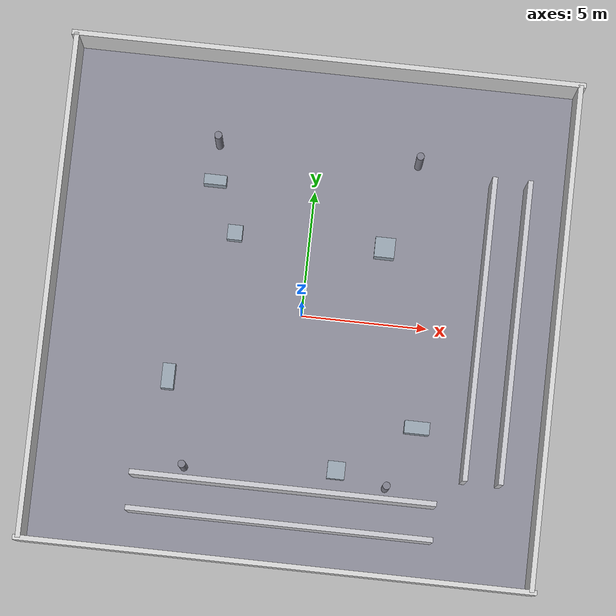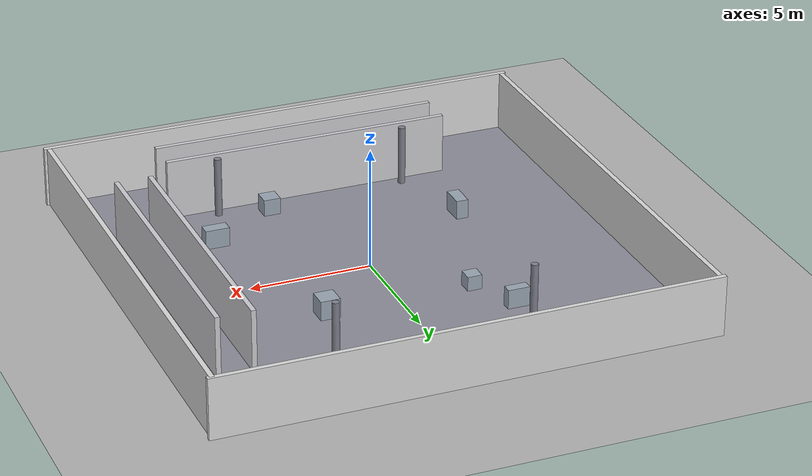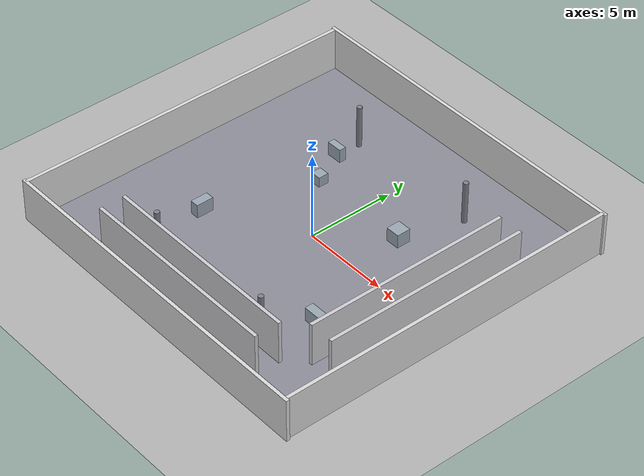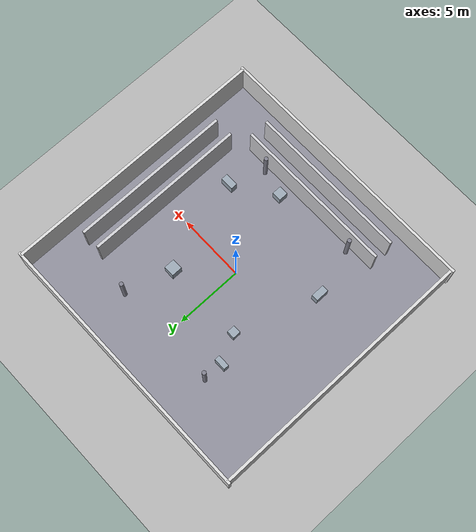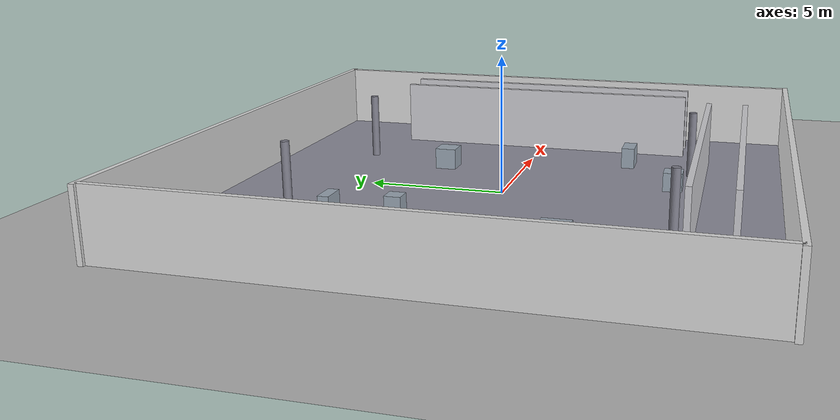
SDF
<?xml version="1.0"?>
<sdf version="1.11">
  <world name="small_warehouse">

    <physics name="1ms" type="ignored">
      <max_step_size>0.001</max_step_size>
      <real_time_factor>0.15</real_time_factor>
    </physics>

    <plugin filename="gz-sim-physics-system"
            name="gz::sim::systems::Physics"/>

    <plugin filename="gz-sim-sensors-system"
            name="gz::sim::systems::Sensors">
      <render_engine>ogre2</render_engine>
    </plugin>

    <plugin filename="gz-sim-scene-broadcaster-system"
            name="gz::sim::systems::SceneBroadcaster"/>

    <plugin filename="gz-sim-user-commands-system"
            name="gz::sim::systems::UserCommands"/>

    <plugin filename="gz-sim-imu-system"
            name="gz::sim::systems::Imu"/>

    <plugin filename="gz-sim-navsat-system"
            name="gz::sim::systems::NavSat"/>

    <!-- NavSat requires a WGS-84 anchor for converting world poses to lat/lon/alt. -->
    <spherical_coordinates>
      <surface_model>EARTH_WGS84</surface_model>
      <world_frame_orientation>ENU</world_frame_orientation>
      <latitude_deg>30.3072</latitude_deg>
      <longitude_deg>-97.7560</longitude_deg>
      <elevation>160.0</elevation>
      <heading_deg>0</heading_deg>
    </spherical_coordinates>

    <light name="sun" type="directional">
      <cast_shadows>true</cast_shadows>
      <pose>0 0 10 0 0 0</pose>
      <diffuse>0.8 0.8 0.8 1</diffuse>
      <specular>0.2 0.2 0.2 1</specular>
      <direction>-0.5 0.1 -0.9</direction>
    </light>

    <!-- Fill light from opposite angle — reduces harsh shadows indoors -->
    <light name="fill" type="directional">
      <cast_shadows>false</cast_shadows>
      <pose>0 0 10 0 0 0</pose>
      <diffuse>0.4 0.4 0.4 1</diffuse>
      <specular>0.0 0.0 0.0 1</specular>
      <direction>0.5 -0.1 -0.9</direction>
    </light>

    <model name="ground_plane">
      <static>true</static>
      <link name="link">
        <collision name="collision">
          <geometry>
            <plane>
              <normal>0 0 1</normal>
              <size>100 100</size>
            </plane>
          </geometry>
          <surface>
            <friction>
              <ode>
                <mu>2.0</mu>
                <mu2>2.0</mu2>
                <slip1>0.0</slip1>
                <slip2>0.0</slip2>
              </ode>
            </friction>
            <contact>
              <ode>
                <kp>1e7</kp>
                <kd>1.0</kd>
              </ode>
            </contact>
          </surface>
        </collision>
        <visual name="visual">
          <geometry>
            <plane>
              <normal>0 0 1</normal>
              <size>100 100</size>
            </plane>
          </geometry>
          <material>
            <ambient>0.70 0.70 0.70 1</ambient>
            <diffuse>0.70 0.70 0.70 1</diffuse>
            <specular>0.05 0.05 0.05 1</specular>
          </material>
        </visual>
      </link>
    </model>

    <!-- Visual-only warehouse floor; ground_plane provides collision. -->
    <model name="warehouse_floor">
      <static>true</static>
      <pose>0 0 0.001 0 0 0</pose>
      <link name="link">
        <visual name="visual">
          <geometry>
            <box><size>20 20 0.001</size></box>
          </geometry>
          <material>
            <ambient>0.55 0.55 0.60 1</ambient>
            <diffuse>0.55 0.55 0.60 1</diffuse>
            <specular>0.05 0.05 0.05 1</specular>
          </material>
        </visual>
      </link>
    </model>

    <model name="wall_north">
      <static>true</static>
      <pose>0 10 1.25 0 0 0</pose>
      <link name="link">
        <collision name="collision">
          <geometry><box><size>20.4 0.2 2.5</size></box></geometry>
        </collision>
        <visual name="visual">
          <geometry><box><size>20.4 0.2 2.5</size></box></geometry>
          <material>
            <ambient>0.85 0.85 0.85 1</ambient>
            <diffuse>0.85 0.85 0.85 1</diffuse>
            <specular>0.05 0.05 0.05 1</specular>
          </material>
        </visual>
      </link>
    </model>

    <model name="wall_south">
      <static>true</static>
      <pose>0 -10 1.25 0 0 0</pose>
      <link name="link">
        <collision name="collision">
          <geometry><box><size>20.4 0.2 2.5</size></box></geometry>
        </collision>
        <visual name="visual">
          <geometry><box><size>20.4 0.2 2.5</size></box></geometry>
          <material>
            <ambient>0.85 0.85 0.85 1</ambient>
            <diffuse>0.85 0.85 0.85 1</diffuse>
            <specular>0.05 0.05 0.05 1</specular>
          </material>
        </visual>
      </link>
    </model>

    <model name="wall_east">
      <static>true</static>
      <pose>10 0 1.25 0 0 0</pose>
      <link name="link">
        <collision name="collision">
          <geometry><box><size>0.2 20.0 2.5</size></box></geometry>
        </collision>
        <visual name="visual">
          <geometry><box><size>0.2 20.0 2.5</size></box></geometry>
          <material>
            <ambient>0.85 0.85 0.85 1</ambient>
            <diffuse>0.85 0.85 0.85 1</diffuse>
            <specular>0.05 0.05 0.05 1</specular>
          </material>
        </visual>
      </link>
    </model>

    <model name="wall_west">
      <static>true</static>
      <pose>-10 0 1.25 0 0 0</pose>
      <link name="link">
        <collision name="collision">
          <geometry><box><size>0.2 20.0 2.5</size></box></geometry>
        </collision>
        <visual name="visual">
          <geometry><box><size>0.2 20.0 2.5</size></box></geometry>
          <material>
            <ambient>0.85 0.85 0.85 1</ambient>
            <diffuse>0.85 0.85 0.85 1</diffuse>
            <specular>0.05 0.05 0.05 1</specular>
          </material>
        </visual>
      </link>
    </model>

    <!-- NE quadrant -->
    <model name="obstacle_1">
      <static>true</static>
      <pose>3.0 3.0 0.40 0 0 0</pose>
      <link name="link">
        <collision name="collision">
          <geometry><box><size>0.80 0.80 0.80</size></box></geometry>
        </collision>
        <visual name="visual">
          <geometry><box><size>0.80 0.80 0.80</size></box></geometry>
          <material>
            <ambient>0.60 0.65 0.70 1</ambient>
            <diffuse>0.60 0.65 0.70 1</diffuse>
            <specular>0.05 0.05 0.05 1</specular>
          </material>
        </visual>
      </link>
    </model>

    <!-- NW quadrant -->
    <model name="obstacle_2">
      <static>true</static>
      <pose>-3.0 3.0 0.30 0 0 0</pose>
      <link name="link">
        <collision name="collision">
          <geometry><box><size>0.60 0.60 0.60</size></box></geometry>
        </collision>
        <visual name="visual">
          <geometry><box><size>0.60 0.60 0.60</size></box></geometry>
          <material>
            <ambient>0.60 0.65 0.70 1</ambient>
            <diffuse>0.60 0.65 0.70 1</diffuse>
            <specular>0.05 0.05 0.05 1</specular>
          </material>
        </visual>
      </link>
    </model>

    <!-- SE quadrant — elongated along X -->
    <model name="obstacle_3">
      <static>true</static>
      <pose>5.0 -4.0 0.40 0 0 0</pose>
      <link name="link">
        <collision name="collision">
          <geometry><box><size>1.00 0.50 0.80</size></box></geometry>
        </collision>
        <visual name="visual">
          <geometry><box><size>1.00 0.50 0.80</size></box></geometry>
          <material>
            <ambient>0.60 0.65 0.70 1</ambient>
            <diffuse>0.60 0.65 0.70 1</diffuse>
            <specular>0.05 0.05 0.05 1</specular>
          </material>
        </visual>
      </link>
    </model>

    <!-- SW quadrant — elongated along Y -->
    <model name="obstacle_4">
      <static>true</static>
      <pose>-5.0 -3.0 0.40 0 0 0</pose>
      <link name="link">
        <collision name="collision">
          <geometry><box><size>0.50 1.00 0.80</size></box></geometry>
        </collision>
        <visual name="visual">
          <geometry><box><size>0.50 1.00 0.80</size></box></geometry>
          <material>
            <ambient>0.60 0.65 0.70 1</ambient>
            <diffuse>0.60 0.65 0.70 1</diffuse>
            <specular>0.05 0.05 0.05 1</specular>
          </material>
        </visual>
      </link>
    </model>

    <!-- South-centre -->
    <model name="obstacle_5">
      <static>true</static>
      <pose>2.0 -6.0 0.35 0 0 0</pose>
      <link name="link">
        <collision name="collision">
          <geometry><box><size>0.70 0.70 0.70</size></box></geometry>
        </collision>
        <visual name="visual">
          <geometry><box><size>0.70 0.70 0.70</size></box></geometry>
          <material>
            <ambient>0.60 0.65 0.70 1</ambient>
            <diffuse>0.60 0.65 0.70 1</diffuse>
            <specular>0.05 0.05 0.05 1</specular>
          </material>
        </visual>
      </link>
    </model>

    <!-- North-west — flat crate shape -->
    <model name="obstacle_6">
      <static>true</static>
      <pose>-4.0 5.0 0.40 0 0 0</pose>
      <link name="link">
        <collision name="collision">
          <geometry><box><size>0.90 0.40 0.80</size></box></geometry>
        </collision>
        <visual name="visual">
          <geometry><box><size>0.90 0.40 0.80</size></box></geometry>
          <material>
            <ambient>0.60 0.65 0.70 1</ambient>
            <diffuse>0.60 0.65 0.70 1</diffuse>
            <specular>0.05 0.05 0.05 1</specular>
          </material>
        </visual>
      </link>
    </model>

    <model name="corridor_a_wall_west">
      <static>true</static>
      <pose>7.0 0 1.25 0 0 0</pose>
      <link name="link">
        <collision name="collision">
          <geometry><box><size>0.2 12.0 2.5</size></box></geometry>
        </collision>
        <visual name="visual">
          <geometry><box><size>0.2 12.0 2.5</size></box></geometry>
          <material>
            <ambient>0.80 0.80 0.82 1</ambient>
            <diffuse>0.80 0.80 0.82 1</diffuse>
            <specular>0.05 0.05 0.05 1</specular>
          </material>
        </visual>
      </link>
    </model>

    <model name="corridor_a_wall_east">
      <static>true</static>
      <pose>8.4 0 1.25 0 0 0</pose>
      <link name="link">
        <collision name="collision">
          <geometry><box><size>0.2 12.0 2.5</size></box></geometry>
        </collision>
        <visual name="visual">
          <geometry><box><size>0.2 12.0 2.5</size></box></geometry>
          <material>
            <ambient>0.80 0.80 0.82 1</ambient>
            <diffuse>0.80 0.80 0.82 1</diffuse>
            <specular>0.05 0.05 0.05 1</specular>
          </material>
        </visual>
      </link>
    </model>

    <model name="corridor_b_wall_north">
      <static>true</static>
      <pose>0 -7.0 1.25 0 0 0</pose>
      <link name="link">
        <collision name="collision">
          <geometry><box><size>12.0 0.2 2.5</size></box></geometry>
        </collision>
        <visual name="visual">
          <geometry><box><size>12.0 0.2 2.5</size></box></geometry>
          <material>
            <ambient>0.80 0.80 0.82 1</ambient>
            <diffuse>0.80 0.80 0.82 1</diffuse>
            <specular>0.05 0.05 0.05 1</specular>
          </material>
        </visual>
      </link>
    </model>

    <model name="corridor_b_wall_south">
      <static>true</static>
      <pose>0 -8.4 1.25 0 0 0</pose>
      <link name="link">
        <collision name="collision">
          <geometry><box><size>12.0 0.2 2.5</size></box></geometry>
        </collision>
        <visual name="visual">
          <geometry><box><size>12.0 0.2 2.5</size></box></geometry>
          <material>
            <ambient>0.80 0.80 0.82 1</ambient>
            <diffuse>0.80 0.80 0.82 1</diffuse>
            <specular>0.05 0.05 0.05 1</specular>
          </material>
        </visual>
      </link>
    </model>

    <model name="pillar_ne">
      <static>true</static>
      <pose>4.0 6.5 1.25 0 0 0</pose>
      <link name="link">
        <collision name="collision">
          <geometry><cylinder><radius>0.15</radius><length>2.5</length></cylinder></geometry>
        </collision>
        <visual name="visual">
          <geometry><cylinder><radius>0.15</radius><length>2.5</length></cylinder></geometry>
          <material>
            <ambient>0.50 0.50 0.55 1</ambient>
            <diffuse>0.50 0.50 0.55 1</diffuse>
            <specular>0.10 0.10 0.10 1</specular>
          </material>
        </visual>
      </link>
    </model>

    <model name="pillar_nw">
      <static>true</static>
      <pose>-4.0 6.5 1.25 0 0 0</pose>
      <link name="link">
        <collision name="collision">
          <geometry><cylinder><radius>0.15</radius><length>2.5</length></cylinder></geometry>
        </collision>
        <visual name="visual">
          <geometry><cylinder><radius>0.15</radius><length>2.5</length></cylinder></geometry>
          <material>
            <ambient>0.50 0.50 0.55 1</ambient>
            <diffuse>0.50 0.50 0.55 1</diffuse>
            <specular>0.10 0.10 0.10 1</specular>
          </material>
        </visual>
      </link>
    </model>

    <model name="pillar_se">
      <static>true</static>
      <pose>4.0 -6.5 1.25 0 0 0</pose>
      <link name="link">
        <collision name="collision">
          <geometry><cylinder><radius>0.15</radius><length>2.5</length></cylinder></geometry>
        </collision>
        <visual name="visual">
          <geometry><cylinder><radius>0.15</radius><length>2.5</length></cylinder></geometry>
          <material>
            <ambient>0.50 0.50 0.55 1</ambient>
            <diffuse>0.50 0.50 0.55 1</diffuse>
            <specular>0.10 0.10 0.10 1</specular>
          </material>
        </visual>
      </link>
    </model>

    <model name="pillar_sw">
      <static>true</static>
      <pose>-4.0 -6.5 1.25 0 0 0</pose>
      <link name="link">
        <collision name="collision">
          <geometry><cylinder><radius>0.15</radius><length>2.5</length></cylinder></geometry>
        </collision>
        <visual name="visual">
          <geometry><cylinder><radius>0.15</radius><length>2.5</length></cylinder></geometry>
          <material>
            <ambient>0.50 0.50 0.55 1</ambient>
            <diffuse>0.50 0.50 0.55 1</diffuse>
            <specular>0.10 0.10 0.10 1</specular>
          </material>
        </visual>
      </link>
    </model>

  </world>
</sdf>
